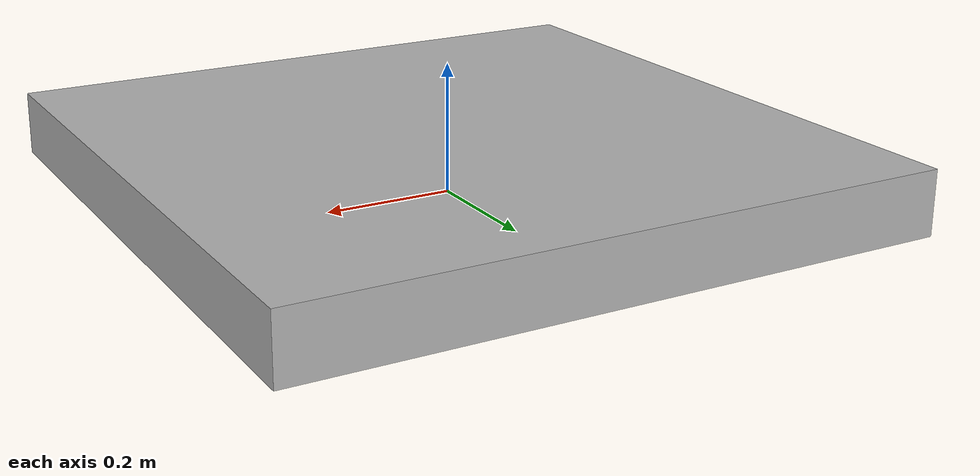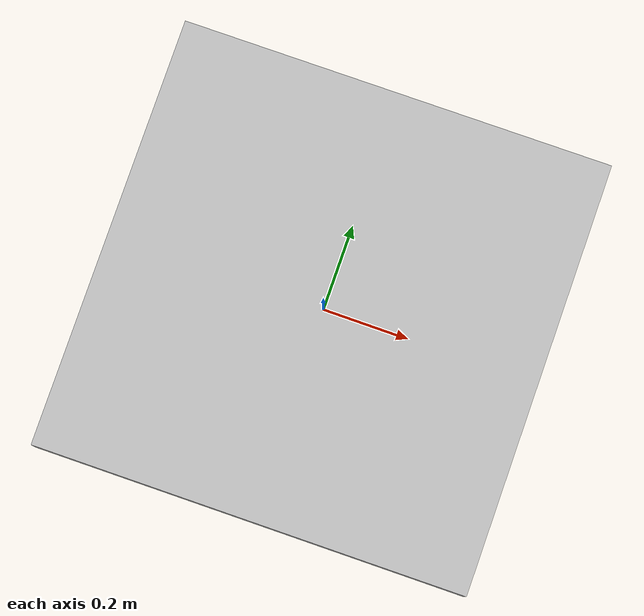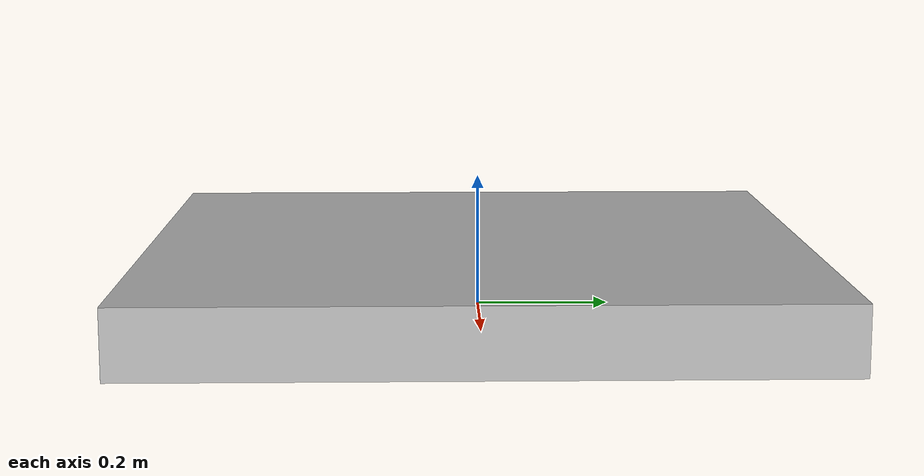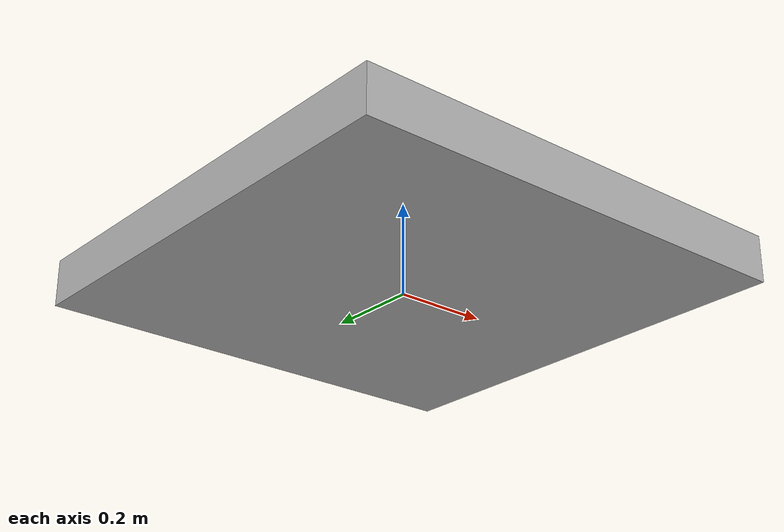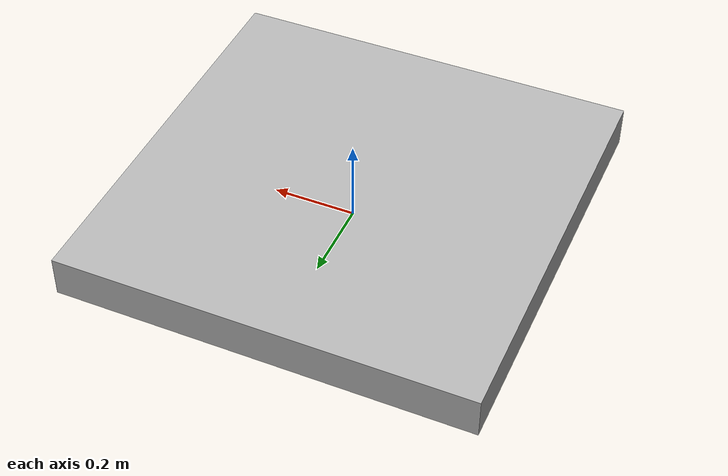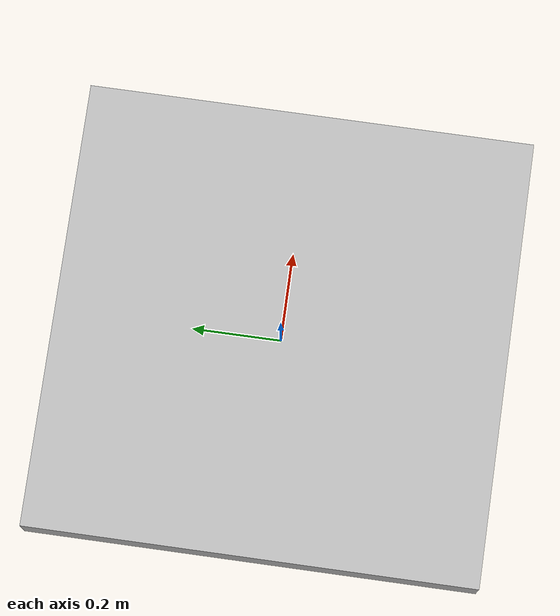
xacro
<?xml version="1.0"?>

<robot name="platform_description" xmlns:xacro="http://www.ros.org/wiki/xacro">

  <!-- Define properties -->
  <xacro:property name="box_mass" value="1"/>
  <xacro:property name="box_size" value="1"/>
  <xacro:property name="plate_height" value="0.1"/>

  <!-- World Link (fixed reference frame) -->
  <link name="world"/>

  <!-- Platform Link -->
  <link name="platform_base">
    <visual>
      <origin xyz="0 0 0" rpy="0 0 0"/>
      <geometry>
        <box size="${box_size} ${box_size} ${plate_height}"/>
      </geometry>
      <material name="platform_material">
        <color rgba="0.7 0.7 0.7 1"/>
      </material>
    </visual>

    <collision>
      <origin xyz="0 0 0" rpy="0 0 0"/>
      <geometry>
        <box size="${box_size} ${box_size} ${plate_height}"/>
      </geometry>
    </collision>

    <inertial>
      <origin xyz="0 0 0" rpy="0 0 0"/>
      <mass value="${box_mass}"/>
      <inertia
        ixx="${(box_mass/12.0) * (box_size*box_size + plate_height*plate_height)}"
        ixy="0.0"
        ixz="0.0"
        iyy="${(box_mass/12.0) * (box_size*box_size + plate_height*plate_height)}"
        iyz="0.0"
        izz="${(box_mass/12.0) * (box_size*box_size + box_size*box_size)}"/>
    </inertial>
  </link>

  <!-- Fixed joint to ground the platform -->
  <joint name="platform_to_world" type="fixed">
    <parent link="world"/>
    <child link="platform_base"/>
    <origin xyz="0 0 ${plate_height/2}" rpy="0 0 0"/>
  </joint>

  <!-- Gazebo material properties -->
  <gazebo reference="platform_base">
    <material>Gazebo/Grey</material>
    <mu1>0.8</mu1>
    <mu2>0.8</mu2>
    <kp>1000000.0</kp>
    <kd>100.0</kd>
    <minDepth>0.001</minDepth>
    <maxVel>0.1</maxVel>
  </gazebo>

</robot>
